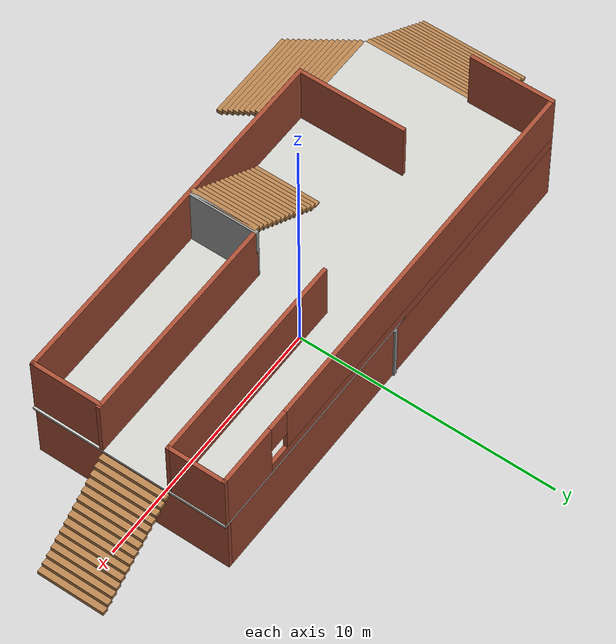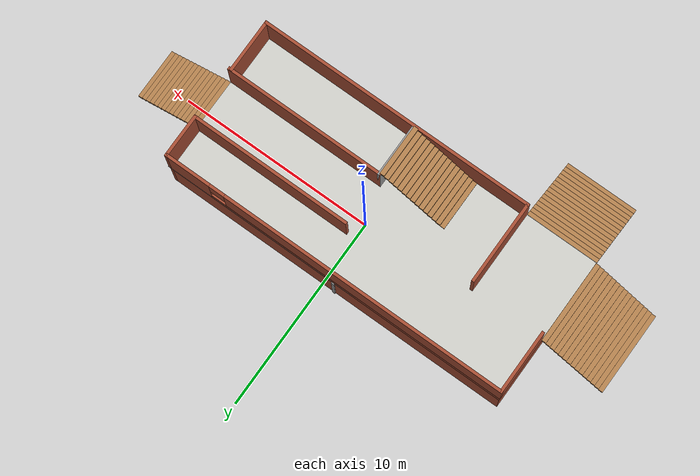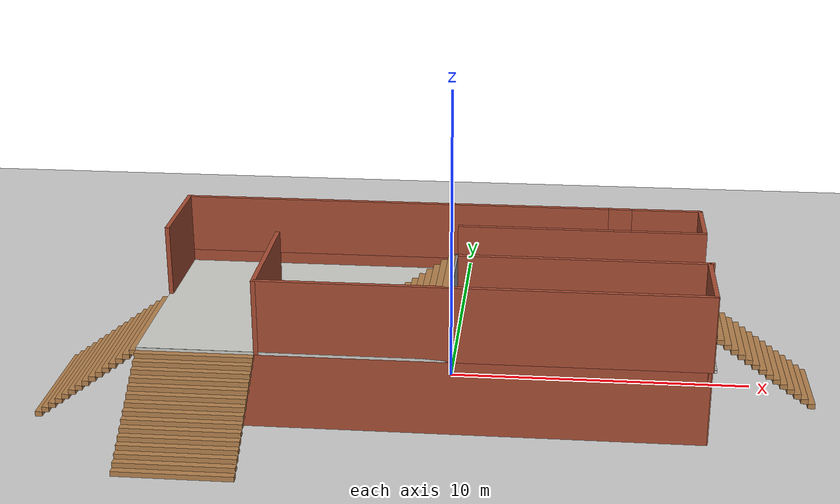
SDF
<sdf version="1.6">
 <world name="default">
  <light name="sun" type="directional">
   <pose>0 0 10 0 -0 0</pose>
   <diffuse>0.8 0.8 0.8 1</diffuse>
   <specular>0.1 0.1 0.1 1</specular>
   <attenuation>
    <range>1000</range>
    <constant>0.9</constant>
    <linear>0.01</linear>
    <quadratic>0.001</quadratic>
   </attenuation>
   <direction>-0.5 0.5 -1</direction>
  </light>
  <model name="ground_plane">
   <static>1</static>
   <link name="link">
    <collision name="collision">
     <geometry><plane><normal>0 0 1</normal><size>100 100</size></plane></geometry>
     <surface><friction><ode><mu>100</mu><mu2>50</mu2></ode></friction></surface>
    </collision>
    <visual name="visual">
     <cast_shadows>0</cast_shadows>
     <geometry><plane><normal>0 0 1</normal><size>100 100</size></plane></geometry>
     <material>
      <script><uri>file://media/materials/scripts/gazebo.material</uri><name>Gazebo/Grey</name></script>
     </material>
    </visual>
   </link>
  </model>
  <gravity>0 0 -9.8</gravity>
  <magnetic_field>6e-06 2.3e-05 -4.2e-05</magnetic_field>
  <atmosphere type="adiabatic"/>
  <physics name="default_physics" default="0" type="ode">
   <max_step_size>0.001</max_step_size>
   <real_time_factor>1</real_time_factor>
   <real_time_update_rate>1000</real_time_update_rate>
  </physics>
  <scene><ambient>0.4 0.4 0.4 1</ambient><background>0.7 0.7 0.7 1</background><shadows>1</shadows></scene>
  <spherical_coordinates>
   <surface_model>EARTH_WGS84</surface_model>
   <latitude_deg>0</latitude_deg>
   <longitude_deg>0</longitude_deg>
   <elevation>0</elevation>
   <heading_deg>0</heading_deg>
  </spherical_coordinates>
  <model name="Staircasebuilding">
   <static>true</static>
   <pose>-0.559158 -2.17306 0 0 -0 0</pose>
   <link name="Floor_0">
    <pose>-0.033404 1.72063 2.5 0 -0 0</pose>
    <visual name="Floor_0_Visual_0">
     <pose>0 -3.74559 0.05 0 -0 0</pose>
     <geometry><box><size>18.0408 0.008813 0.1</size></box></geometry>
     <material>
      <script><uri>file://media/materials/scripts/gazebo.material</uri><name>Gazebo/CeilingTiled</name></script>
      <ambient>1 1 1 1</ambient>
     </material>
    </visual>
    <collision name="Floor_0_Collision_0">
     <geometry><box><size>18.0408 0.008813 0.1</size></box></geometry>
     <pose>0 -3.74559 0.05 0 -0 0</pose>
    </collision>
    <visual name="Floor_0_Visual_1">
     <pose>0 -3.74409 0.05 0 -0 0</pose>
     <geometry><box><size>18.0408 0.005811 0.1</size></box></geometry>
     <material>
      <script><uri>file://media/materials/scripts/gazebo.material</uri><name>Gazebo/CeilingTiled</name></script>
      <ambient>1 1 1 1</ambient>
     </material>
    </visual>
    <collision name="Floor_0_Collision_1">
     <geometry><box><size>18.0408 0.005811 0.1</size></box></geometry>
     <pose>0 -3.74409 0.05 0 -0 0</pose>
    </collision>
    <visual name="Floor_0_Visual_2">
     <pose>0.007256 0.004406 0.05 0 -0 0</pose>
     <geometry><box><size>18.0263 7.49119 0.1</size></box></geometry>
     <material>
      <script><uri>file://media/materials/scripts/gazebo.material</uri><name>Gazebo/CeilingTiled</name></script>
      <ambient>1 1 1 1</ambient>
     </material>
    </visual>
    <collision name="Floor_0_Collision_2">
     <geometry><box><size>18.0263 7.49119 0.1</size></box></geometry>
     <pose>0.007256 0.004406 0.05 0 -0 0</pose>
    </collision>
    <visual name="Floor_0_Visual_3">
     <pose>0.007256 0.004406 0.05 0 -0 0</pose>
     <geometry><box><size>18.0263 7.49119 0.1</size></box></geometry>
     <material>
      <script><uri>file://media/materials/scripts/gazebo.material</uri><name>Gazebo/CeilingTiled</name></script>
      <ambient>1 1 1 1</ambient>
     </material>
    </visual>
    <collision name="Floor_0_Collision_3">
     <geometry><box><size>18.0263 7.49119 0.1</size></box></geometry>
     <pose>0.007256 0.004406 0.05 0 -0 0</pose>
    </collision>
   </link>
   <link name="Stairs_1">
    <visual name="Stairs_1_Visual_0">
     <pose>-7.17241 -5.4097 0.083333 0 -0 -3.14159</pose>
     <geometry><box><size>3.76343 0.233333 0.166667</size></box></geometry>
     <material>
      <script><uri>file://media/materials/scripts/gazebo.material</uri><name>Gazebo/Wood</name></script>
      <ambient>1 1 1 1</ambient>
     </material>
    </visual>
    <collision name="Stairs_1_Collision_0">
     <geometry><box><size>3.76343 0.233333 0.166667</size></box></geometry>
     <pose>-7.17241 -5.4097 0.083333 0 -0 -3.14159</pose>
    </collision>
    <visual name="Stairs_1_Visual_1">
     <pose>-7.17241 -5.17637 0.25 0 -0 -3.14159</pose>
     <geometry><box><size>3.76343 0.233333 0.166667</size></box></geometry>
     <material>
      <script><uri>file://media/materials/scripts/gazebo.material</uri><name>Gazebo/Wood</name></script>
      <ambient>1 1 1 1</ambient>
     </material>
    </visual>
    <collision name="Stairs_1_Collision_1">
     <geometry><box><size>3.76343 0.233333 0.166667</size></box></geometry>
     <pose>-7.17241 -5.17637 0.25 0 -0 -3.14159</pose>
    </collision>
    <visual name="Stairs_1_Visual_2">
     <pose>-7.17241 -4.94304 0.416667 0 -0 -3.14159</pose>
     <geometry><box><size>3.76343 0.233333 0.166667</size></box></geometry>
     <material>
      <script><uri>file://media/materials/scripts/gazebo.material</uri><name>Gazebo/Wood</name></script>
      <ambient>1 1 1 1</ambient>
     </material>
    </visual>
    <collision name="Stairs_1_Collision_2">
     <geometry><box><size>3.76343 0.233333 0.166667</size></box></geometry>
     <pose>-7.17241 -4.94304 0.416667 0 -0 -3.14159</pose>
    </collision>
    <visual name="Stairs_1_Visual_3">
     <pose>-7.17241 -4.7097 0.583333 0 -0 -3.14159</pose>
     <geometry><box><size>3.76343 0.233333 0.166667</size></box></geometry>
     <material>
      <script><uri>file://media/materials/scripts/gazebo.material</uri><name>Gazebo/Wood</name></script>
      <ambient>1 1 1 1</ambient>
     </material>
    </visual>
    <collision name="Stairs_1_Collision_3">
     <geometry><box><size>3.76343 0.233333 0.166667</size></box></geometry>
     <pose>-7.17241 -4.7097 0.583333 0 -0 -3.14159</pose>
    </collision>
    <visual name="Stairs_1_Visual_4">
     <pose>-7.17241 -4.47637 0.75 0 -0 -3.14159</pose>
     <geometry><box><size>3.76343 0.233333 0.166667</size></box></geometry>
     <material>
      <script><uri>file://media/materials/scripts/gazebo.material</uri><name>Gazebo/Wood</name></script>
      <ambient>1 1 1 1</ambient>
     </material>
    </visual>
    <collision name="Stairs_1_Collision_4">
     <geometry><box><size>3.76343 0.233333 0.166667</size></box></geometry>
     <pose>-7.17241 -4.47637 0.75 0 -0 -3.14159</pose>
    </collision>
    <visual name="Stairs_1_Visual_5">
     <pose>-7.17241 -4.24304 0.916667 0 -0 -3.14159</pose>
     <geometry><box><size>3.76343 0.233333 0.166667</size></box></geometry>
     <material>
      <script><uri>file://media/materials/scripts/gazebo.material</uri><name>Gazebo/Wood</name></script>
      <ambient>1 1 1 1</ambient>
     </material>
    </visual>
    <collision name="Stairs_1_Collision_5">
     <geometry><box><size>3.76343 0.233333 0.166667</size></box></geometry>
     <pose>-7.17241 -4.24304 0.916667 0 -0 -3.14159</pose>
    </collision>
    <visual name="Stairs_1_Visual_6">
     <pose>-7.17241 -4.0097 1.08333 0 -0 -3.14159</pose>
     <geometry><box><size>3.76343 0.233333 0.166667</size></box></geometry>
     <material>
      <script><uri>file://media/materials/scripts/gazebo.material</uri><name>Gazebo/Wood</name></script>
      <ambient>1 1 1 1</ambient>
     </material>
    </visual>
    <collision name="Stairs_1_Collision_6">
     <geometry><box><size>3.76343 0.233333 0.166667</size></box></geometry>
     <pose>-7.17241 -4.0097 1.08333 0 -0 -3.14159</pose>
    </collision>
    <visual name="Stairs_1_Visual_7">
     <pose>-7.17241 -3.77637 1.25 0 -0 -3.14159</pose>
     <geometry><box><size>3.76343 0.233333 0.166667</size></box></geometry>
     <material>
      <script><uri>file://media/materials/scripts/gazebo.material</uri><name>Gazebo/Wood</name></script>
      <ambient>1 1 1 1</ambient>
     </material>
    </visual>
    <collision name="Stairs_1_Collision_7">
     <geometry><box><size>3.76343 0.233333 0.166667</size></box></geometry>
     <pose>-7.17241 -3.77637 1.25 0 -0 -3.14159</pose>
    </collision>
    <visual name="Stairs_1_Visual_8">
     <pose>-7.17241 -3.54304 1.41667 0 -0 -3.14159</pose>
     <geometry><box><size>3.76343 0.233333 0.166667</size></box></geometry>
     <material>
      <script><uri>file://media/materials/scripts/gazebo.material</uri><name>Gazebo/Wood</name></script>
      <ambient>1 1 1 1</ambient>
     </material>
    </visual>
    <collision name="Stairs_1_Collision_8">
     <geometry><box><size>3.76343 0.233333 0.166667</size></box></geometry>
     <pose>-7.17241 -3.54304 1.41667 0 -0 -3.14159</pose>
    </collision>
    <visual name="Stairs_1_Visual_9">
     <pose>-7.17241 -3.3097 1.58333 0 -0 -3.14159</pose>
     <geometry><box><size>3.76343 0.233333 0.166667</size></box></geometry>
     <material>
      <script><uri>file://media/materials/scripts/gazebo.material</uri><name>Gazebo/Wood</name></script>
      <ambient>1 1 1 1</ambient>
     </material>
    </visual>
    <collision name="Stairs_1_Collision_9">
     <geometry><box><size>3.76343 0.233333 0.166667</size></box></geometry>
     <pose>-7.17241 -3.3097 1.58333 0 -0 -3.14159</pose>
    </collision>
    <visual name="Stairs_1_Visual_10">
     <pose>-7.17241 -3.07637 1.75 0 -0 -3.14159</pose>
     <geometry><box><size>3.76343 0.233333 0.166667</size></box></geometry>
     <material>
      <script><uri>file://media/materials/scripts/gazebo.material</uri><name>Gazebo/Wood</name></script>
      <ambient>1 1 1 1</ambient>
     </material>
    </visual>
    <collision name="Stairs_1_Collision_10">
     <geometry><box><size>3.76343 0.233333 0.166667</size></box></geometry>
     <pose>-7.17241 -3.07637 1.75 0 -0 -3.14159</pose>
    </collision>
    <visual name="Stairs_1_Visual_11">
     <pose>-7.17241 -2.84304 1.91667 0 -0 -3.14159</pose>
     <geometry><box><size>3.76343 0.233333 0.166667</size></box></geometry>
     <material>
      <script><uri>file://media/materials/scripts/gazebo.material</uri><name>Gazebo/Wood</name></script>
      <ambient>1 1 1 1</ambient>
     </material>
    </visual>
    <collision name="Stairs_1_Collision_11">
     <geometry><box><size>3.76343 0.233333 0.166667</size></box></geometry>
     <pose>-7.17241 -2.84304 1.91667 0 -0 -3.14159</pose>
    </collision>
    <visual name="Stairs_1_Visual_12">
     <pose>-7.17241 -2.6097 2.08333 0 -0 -3.14159</pose>
     <geometry><box><size>3.76343 0.233333 0.166667</size></box></geometry>
     <material>
      <script><uri>file://media/materials/scripts/gazebo.material</uri><name>Gazebo/Wood</name></script>
      <ambient>1 1 1 1</ambient>
     </material>
    </visual>
    <collision name="Stairs_1_Collision_12">
     <geometry><box><size>3.76343 0.233333 0.166667</size></box></geometry>
     <pose>-7.17241 -2.6097 2.08333 0 -0 -3.14159</pose>
    </collision>
    <visual name="Stairs_1_Visual_13">
     <pose>-7.17241 -2.37637 2.25 0 -0 -3.14159</pose>
     <geometry><box><size>3.76343 0.233333 0.166667</size></box></geometry>
     <material>
      <script><uri>file://media/materials/scripts/gazebo.material</uri><name>Gazebo/Wood</name></script>
      <ambient>1 1 1 1</ambient>
     </material>
    </visual>
    <collision name="Stairs_1_Collision_13">
     <geometry><box><size>3.76343 0.233333 0.166667</size></box></geometry>
     <pose>-7.17241 -2.37637 2.25 0 -0 -3.14159</pose>
    </collision>
    <visual name="Stairs_1_Visual_14">
     <pose>-7.17241 -2.14304 2.41667 0 -0 -3.14159</pose>
     <geometry><box><size>3.76343 0.233333 0.166667</size></box></geometry>
     <material>
      <script><uri>file://media/materials/scripts/gazebo.material</uri><name>Gazebo/Wood</name></script>
      <ambient>1 1 1 1</ambient>
     </material>
    </visual>
    <collision name="Stairs_1_Collision_14">
     <geometry><box><size>3.76343 0.233333 0.166667</size></box></geometry>
     <pose>-7.17241 -2.14304 2.41667 0 -0 -3.14159</pose>
    </collision>
   </link>
   <link name="Stairs_3">
    <visual name="Stairs_3_Visual_0">
     <pose>-12.4226 0.091568 0.083333 0 -0 1.5708</pose>
     <geometry><box><size>4.22426 0.233333 0.166667</size></box></geometry>
     <material>
      <script><uri>file://media/materials/scripts/gazebo.material</uri><name>Gazebo/Wood</name></script>
      <ambient>1 1 1 1</ambient>
     </material>
    </visual>
    <collision name="Stairs_3_Collision_0">
     <geometry><box><size>4.22426 0.233333 0.166667</size></box></geometry>
     <pose>-12.4226 0.091568 0.083333 0 -0 1.5708</pose>
    </collision>
    <visual name="Stairs_3_Visual_1">
     <pose>-12.1893 0.091568 0.25 0 -0 1.5708</pose>
     <geometry><box><size>4.22426 0.233333 0.166667</size></box></geometry>
     <material>
      <script><uri>file://media/materials/scripts/gazebo.material</uri><name>Gazebo/Wood</name></script>
      <ambient>1 1 1 1</ambient>
     </material>
    </visual>
    <collision name="Stairs_3_Collision_1">
     <geometry><box><size>4.22426 0.233333 0.166667</size></box></geometry>
     <pose>-12.1893 0.091568 0.25 0 -0 1.5708</pose>
    </collision>
    <visual name="Stairs_3_Visual_2">
     <pose>-11.956 0.091568 0.416667 0 -0 1.5708</pose>
     <geometry><box><size>4.22426 0.233333 0.166667</size></box></geometry>
     <material>
      <script><uri>file://media/materials/scripts/gazebo.material</uri><name>Gazebo/Wood</name></script>
      <ambient>1 1 1 1</ambient>
     </material>
    </visual>
    <collision name="Stairs_3_Collision_2">
     <geometry><box><size>4.22426 0.233333 0.166667</size></box></geometry>
     <pose>-11.956 0.091568 0.416667 0 -0 1.5708</pose>
    </collision>
    <visual name="Stairs_3_Visual_3">
     <pose>-11.7226 0.091568 0.583333 0 -0 1.5708</pose>
     <geometry><box><size>4.22426 0.233333 0.166667</size></box></geometry>
     <material>
      <script><uri>file://media/materials/scripts/gazebo.material</uri><name>Gazebo/Wood</name></script>
      <ambient>1 1 1 1</ambient>
     </material>
    </visual>
    <collision name="Stairs_3_Collision_3">
     <geometry><box><size>4.22426 0.233333 0.166667</size></box></geometry>
     <pose>-11.7226 0.091568 0.583333 0 -0 1.5708</pose>
    </collision>
    <visual name="Stairs_3_Visual_4">
     <pose>-11.4893 0.091568 0.75 0 -0 1.5708</pose>
     <geometry><box><size>4.22426 0.233333 0.166667</size></box></geometry>
     <material>
      <script><uri>file://media/materials/scripts/gazebo.material</uri><name>Gazebo/Wood</name></script>
      <ambient>1 1 1 1</ambient>
     </material>
    </visual>
    <collision name="Stairs_3_Collision_4">
     <geometry><box><size>4.22426 0.233333 0.166667</size></box></geometry>
     <pose>-11.4893 0.091568 0.75 0 -0 1.5708</pose>
    </collision>
    <visual name="Stairs_3_Visual_5">
     <pose>-11.256 0.091568 0.916667 0 -0 1.5708</pose>
     <geometry><box><size>4.22426 0.233333 0.166667</size></box></geometry>
     <material>
      <script><uri>file://media/materials/scripts/gazebo.material</uri><name>Gazebo/Wood</name></script>
      <ambient>1 1 1 1</ambient>
     </material>
    </visual>
    <collision name="Stairs_3_Collision_5">
     <geometry><box><size>4.22426 0.233333 0.166667</size></box></geometry>
     <pose>-11.256 0.091568 0.916667 0 -0 1.5708</pose>
    </collision>
    <visual name="Stairs_3_Visual_6">
     <pose>-11.0226 0.091568 1.08333 0 -0 1.5708</pose>
     <geometry><box><size>4.22426 0.233333 0.166667</size></box></geometry>
     <material>
      <script><uri>file://media/materials/scripts/gazebo.material</uri><name>Gazebo/Wood</name></script>
      <ambient>1 1 1 1</ambient>
     </material>
    </visual>
    <collision name="Stairs_3_Collision_6">
     <geometry><box><size>4.22426 0.233333 0.166667</size></box></geometry>
     <pose>-11.0226 0.091568 1.08333 0 -0 1.5708</pose>
    </collision>
    <visual name="Stairs_3_Visual_7">
     <pose>-10.7893 0.091568 1.25 0 -0 1.5708</pose>
     <geometry><box><size>4.22426 0.233333 0.166667</size></box></geometry>
     <material>
      <script><uri>file://media/materials/scripts/gazebo.material</uri><name>Gazebo/Wood</name></script>
      <ambient>1 1 1 1</ambient>
     </material>
    </visual>
    <collision name="Stairs_3_Collision_7">
     <geometry><box><size>4.22426 0.233333 0.166667</size></box></geometry>
     <pose>-10.7893 0.091568 1.25 0 -0 1.5708</pose>
    </collision>
    <visual name="Stairs_3_Visual_8">
     <pose>-10.556 0.091568 1.41667 0 -0 1.5708</pose>
     <geometry><box><size>4.22426 0.233333 0.166667</size></box></geometry>
     <material>
      <script><uri>file://media/materials/scripts/gazebo.material</uri><name>Gazebo/Wood</name></script>
      <ambient>1 1 1 1</ambient>
     </material>
    </visual>
    <collision name="Stairs_3_Collision_8">
     <geometry><box><size>4.22426 0.233333 0.166667</size></box></geometry>
     <pose>-10.556 0.091568 1.41667 0 -0 1.5708</pose>
    </collision>
    <visual name="Stairs_3_Visual_9">
     <pose>-10.3226 0.091568 1.58333 0 -0 1.5708</pose>
     <geometry><box><size>4.22426 0.233333 0.166667</size></box></geometry>
     <material>
      <script><uri>file://media/materials/scripts/gazebo.material</uri><name>Gazebo/Wood</name></script>
      <ambient>1 1 1 1</ambient>
     </material>
    </visual>
    <collision name="Stairs_3_Collision_9">
     <geometry><box><size>4.22426 0.233333 0.166667</size></box></geometry>
     <pose>-10.3226 0.091568 1.58333 0 -0 1.5708</pose>
    </collision>
    <visual name="Stairs_3_Visual_10">
     <pose>-10.0893 0.091568 1.75 0 -0 1.5708</pose>
     <geometry><box><size>4.22426 0.233333 0.166667</size></box></geometry>
     <material>
      <script><uri>file://media/materials/scripts/gazebo.material</uri><name>Gazebo/Wood</name></script>
      <ambient>1 1 1 1</ambient>
     </material>
    </visual>
    <collision name="Stairs_3_Collision_10">
     <geometry><box><size>4.22426 0.233333 0.166667</size></box></geometry>
     <pose>-10.0893 0.091568 1.75 0 -0 1.5708</pose>
    </collision>
    <visual name="Stairs_3_Visual_11">
     <pose>-9.85595 0.091568 1.91667 0 -0 1.5708</pose>
     <geometry><box><size>4.22426 0.233333 0.166667</size></box></geometry>
     <material>
      <script><uri>file://media/materials/scripts/gazebo.material</uri><name>Gazebo/Wood</name></script>
      <ambient>1 1 1 1</ambient>
     </material>
    </visual>
    <collision name="Stairs_3_Collision_11">
     <geometry><box><size>4.22426 0.233333 0.166667</size></box></geometry>
     <pose>-9.85595 0.091568 1.91667 0 -0 1.5708</pose>
    </collision>
    <visual name="Stairs_3_Visual_12">
     <pose>-9.62262 0.091568 2.08333 0 -0 1.5708</pose>
     <geometry><box><size>4.22426 0.233333 0.166667</size></box></geometry>
     <material>
      <script><uri>file://media/materials/scripts/gazebo.material</uri><name>Gazebo/Wood</name></script>
      <ambient>1 1 1 1</ambient>
     </material>
    </visual>
    <collision name="Stairs_3_Collision_12">
     <geometry><box><size>4.22426 0.233333 0.166667</size></box></geometry>
     <pose>-9.62262 0.091568 2.08333 0 -0 1.5708</pose>
    </collision>
    <visual name="Stairs_3_Visual_13">
     <pose>-9.38928 0.091568 2.25 0 -0 1.5708</pose>
     <geometry><box><size>4.22426 0.233333 0.166667</size></box></geometry>
     <material>
      <script><uri>file://media/materials/scripts/gazebo.material</uri><name>Gazebo/Wood</name></script>
      <ambient>1 1 1 1</ambient>
     </material>
    </visual>
    <collision name="Stairs_3_Collision_13">
     <geometry><box><size>4.22426 0.233333 0.166667</size></box></geometry>
     <pose>-9.38928 0.091568 2.25 0 -0 1.5708</pose>
    </collision>
    <visual name="Stairs_3_Visual_14">
     <pose>-9.15595 0.091568 2.41667 0 -0 1.5708</pose>
     <geometry><box><size>4.22426 0.233333 0.166667</size></box></geometry>
     <material>
      <script><uri>file://media/materials/scripts/gazebo.material</uri><name>Gazebo/Wood</name></script>
      <ambient>1 1 1 1</ambient>
     </material>
    </visual>
    <collision name="Stairs_3_Collision_14">
     <geometry><box><size>4.22426 0.233333 0.166667</size></box></geometry>
     <pose>-9.15595 0.091568 2.41667 0 -0 1.5708</pose>
    </collision>
   </link>
   <link name="Stairs_4">
    <visual name="Stairs_4_Visual_0">
     <pose>-2.56499 -0.643419 2.58333 0 -0 1.5708</pose>
     <geometry><box><size>2.59069 0.233333 0.166667</size></box></geometry>
     <material>
      <script><uri>file://media/materials/scripts/gazebo.material</uri><name>Gazebo/Wood</name></script>
      <ambient>1 1 1 1</ambient>
     </material>
    </visual>
    <collision name="Stairs_4_Collision_0">
     <geometry><box><size>2.59069 0.233333 0.166667</size></box></geometry>
     <pose>-2.56499 -0.643419 2.58333 0 -0 1.5708</pose>
    </collision>
    <visual name="Stairs_4_Visual_1">
     <pose>-2.33165 -0.643419 2.75 0 -0 1.5708</pose>
     <geometry><box><size>2.59069 0.233333 0.166667</size></box></geometry>
     <material>
      <script><uri>file://media/materials/scripts/gazebo.material</uri><name>Gazebo/Wood</name></script>
      <ambient>1 1 1 1</ambient>
     </material>
    </visual>
    <collision name="Stairs_4_Collision_1">
     <geometry><box><size>2.59069 0.233333 0.166667</size></box></geometry>
     <pose>-2.33165 -0.643419 2.75 0 -0 1.5708</pose>
    </collision>
    <visual name="Stairs_4_Visual_2">
     <pose>-2.09832 -0.643419 2.91667 0 -0 1.5708</pose>
     <geometry><box><size>2.59069 0.233333 0.166667</size></box></geometry>
     <material>
      <script><uri>file://media/materials/scripts/gazebo.material</uri><name>Gazebo/Wood</name></script>
      <ambient>1 1 1 1</ambient>
     </material>
    </visual>
    <collision name="Stairs_4_Collision_2">
     <geometry><box><size>2.59069 0.233333 0.166667</size></box></geometry>
     <pose>-2.09832 -0.643419 2.91667 0 -0 1.5708</pose>
    </collision>
    <visual name="Stairs_4_Visual_3">
     <pose>-1.86499 -0.643419 3.08333 0 -0 1.5708</pose>
     <geometry><box><size>2.59069 0.233333 0.166667</size></box></geometry>
     <material>
      <script><uri>file://media/materials/scripts/gazebo.material</uri><name>Gazebo/Wood</name></script>
      <ambient>1 1 1 1</ambient>
     </material>
    </visual>
    <collision name="Stairs_4_Collision_3">
     <geometry><box><size>2.59069 0.233333 0.166667</size></box></geometry>
     <pose>-1.86499 -0.643419 3.08333 0 -0 1.5708</pose>
    </collision>
    <visual name="Stairs_4_Visual_4">
     <pose>-1.63165 -0.643419 3.25 0 -0 1.5708</pose>
     <geometry><box><size>2.59069 0.233333 0.166667</size></box></geometry>
     <material>
      <script><uri>file://media/materials/scripts/gazebo.material</uri><name>Gazebo/Wood</name></script>
      <ambient>1 1 1 1</ambient>
     </material>
    </visual>
    <collision name="Stairs_4_Collision_4">
     <geometry><box><size>2.59069 0.233333 0.166667</size></box></geometry>
     <pose>-1.63165 -0.643419 3.25 0 -0 1.5708</pose>
    </collision>
    <visual name="Stairs_4_Visual_5">
     <pose>-1.39832 -0.643419 3.41667 0 -0 1.5708</pose>
     <geometry><box><size>2.59069 0.233333 0.166667</size></box></geometry>
     <material>
      <script><uri>file://media/materials/scripts/gazebo.material</uri><name>Gazebo/Wood</name></script>
      <ambient>1 1 1 1</ambient>
     </material>
    </visual>
    <collision name="Stairs_4_Collision_5">
     <geometry><box><size>2.59069 0.233333 0.166667</size></box></geometry>
     <pose>-1.39832 -0.643419 3.41667 0 -0 1.5708</pose>
    </collision>
    <visual name="Stairs_4_Visual_6">
     <pose>-1.16499 -0.643419 3.58333 0 -0 1.5708</pose>
     <geometry><box><size>2.59069 0.233333 0.166667</size></box></geometry>
     <material>
      <script><uri>file://media/materials/scripts/gazebo.material</uri><name>Gazebo/Wood</name></script>
      <ambient>1 1 1 1</ambient>
     </material>
    </visual>
    <collision name="Stairs_4_Collision_6">
     <geometry><box><size>2.59069 0.233333 0.166667</size></box></geometry>
     <pose>-1.16499 -0.643419 3.58333 0 -0 1.5708</pose>
    </collision>
    <visual name="Stairs_4_Visual_7">
     <pose>-0.931654 -0.643419 3.75 0 -0 1.5708</pose>
     <geometry><box><size>2.59069 0.233333 0.166667</size></box></geometry>
     <material>
      <script><uri>file://media/materials/scripts/gazebo.material</uri><name>Gazebo/Wood</name></script>
      <ambient>1 1 1 1</ambient>
     </material>
    </visual>
    <collision name="Stairs_4_Collision_7">
     <geometry><box><size>2.59069 0.233333 0.166667</size></box></geometry>
     <pose>-0.931654 -0.643419 3.75 0 -0 1.5708</pose>
    </collision>
    <visual name="Stairs_4_Visual_8">
     <pose>-0.698321 -0.643419 3.91667 0 -0 1.5708</pose>
     <geometry><box><size>2.59069 0.233333 0.166667</size></box></geometry>
     <material>
      <script><uri>file://media/materials/scripts/gazebo.material</uri><name>Gazebo/Wood</name></script>
      <ambient>1 1 1 1</ambient>
     </material>
    </visual>
    <collision name="Stairs_4_Collision_8">
     <geometry><box><size>2.59069 0.233333 0.166667</size></box></geometry>
     <pose>-0.698321 -0.643419 3.91667 0 -0 1.5708</pose>
    </collision>
    <visual name="Stairs_4_Visual_9">
     <pose>-0.464987 -0.643419 4.08333 0 -0 1.5708</pose>
     <geometry><box><size>2.59069 0.233333 0.166667</size></box></geometry>
     <material>
      <script><uri>file://media/materials/scripts/gazebo.material</uri><name>Gazebo/Wood</name></script>
      <ambient>1 1 1 1</ambient>
     </material>
    </visual>
    <collision name="Stairs_4_Collision_9">
     <geometry><box><size>2.59069 0.233333 0.166667</size></box></geometry>
     <pose>-0.464987 -0.643419 4.08333 0 -0 1.5708</pose>
    </collision>
    <visual name="Stairs_4_Visual_10">
     <pose>-0.231654 -0.643419 4.25 0 -0 1.5708</pose>
     <geometry><box><size>2.59069 0.233333 0.166667</size></box></geometry>
     <material>
      <script><uri>file://media/materials/scripts/gazebo.material</uri><name>Gazebo/Wood</name></script>
      <ambient>1 1 1 1</ambient>
     </material>
    </visual>
    <collision name="Stairs_4_Collision_10">
     <geometry><box><size>2.59069 0.233333 0.166667</size></box></geometry>
     <pose>-0.231654 -0.643419 4.25 0 -0 1.5708</pose>
    </collision>
    <visual name="Stairs_4_Visual_11">
     <pose>0.001679 -0.643419 4.41667 0 -0 1.5708</pose>
     <geometry><box><size>2.59069 0.233333 0.166667</size></box></geometry>
     <material>
      <script><uri>file://media/materials/scripts/gazebo.material</uri><name>Gazebo/Wood</name></script>
      <ambient>1 1 1 1</ambient>
     </material>
    </visual>
    <collision name="Stairs_4_Collision_11">
     <geometry><box><size>2.59069 0.233333 0.166667</size></box></geometry>
     <pose>0.001679 -0.643419 4.41667 0 -0 1.5708</pose>
    </collision>
    <visual name="Stairs_4_Visual_12">
     <pose>0.235013 -0.643419 4.58333 0 -0 1.5708</pose>
     <geometry><box><size>2.59069 0.233333 0.166667</size></box></geometry>
     <material>
      <script><uri>file://media/materials/scripts/gazebo.material</uri><name>Gazebo/Wood</name></script>
      <ambient>1 1 1 1</ambient>
     </material>
    </visual>
    <collision name="Stairs_4_Collision_12">
     <geometry><box><size>2.59069 0.233333 0.166667</size></box></geometry>
     <pose>0.235013 -0.643419 4.58333 0 -0 1.5708</pose>
    </collision>
    <visual name="Stairs_4_Visual_13">
     <pose>0.468346 -0.643419 4.75 0 -0 1.5708</pose>
     <geometry><box><size>2.59069 0.233333 0.166667</size></box></geometry>
     <material>
      <script><uri>file://media/materials/scripts/gazebo.material</uri><name>Gazebo/Wood</name></script>
      <ambient>1 1 1 1</ambient>
     </material>
    </visual>
    <collision name="Stairs_4_Collision_13">
     <geometry><box><size>2.59069 0.233333 0.166667</size></box></geometry>
     <pose>0.468346 -0.643419 4.75 0 -0 1.5708</pose>
    </collision>
    <visual name="Stairs_4_Visual_14">
     <pose>0.701679 -0.643419 4.91667 0 -0 1.5708</pose>
     <geometry><box><size>2.59069 0.233333 0.166667</size></box></geometry>
     <material>
      <script><uri>file://media/materials/scripts/gazebo.material</uri><name>Gazebo/Wood</name></script>
      <ambient>1 1 1 1</ambient>
     </material>
    </visual>
    <collision name="Stairs_4_Collision_14">
     <geometry><box><size>2.59069 0.233333 0.166667</size></box></geometry>
     <pose>0.701679 -0.643419 4.91667 0 -0 1.5708</pose>
    </collision>
   </link>
   <link name="Stairs_6">
    <visual name="Stairs_6_Visual_0">
     <pose>12.4214 2.03413 0.083333 0 -0 -1.5708</pose>
     <geometry><box><size>2.58304 0.235679 0.166667</size></box></geometry>
     <material>
      <script><uri>file://media/materials/scripts/gazebo.material</uri><name>Gazebo/Wood</name></script>
      <ambient>1 1 1 1</ambient>
     </material>
    </visual>
    <collision name="Stairs_6_Collision_0">
     <geometry><box><size>2.58304 0.235679 0.166667</size></box></geometry>
     <pose>12.4214 2.03413 0.083333 0 -0 -1.5708</pose>
    </collision>
    <visual name="Stairs_6_Visual_1">
     <pose>12.1858 2.03413 0.25 0 -0 -1.5708</pose>
     <geometry><box><size>2.58304 0.235679 0.166667</size></box></geometry>
     <material>
      <script><uri>file://media/materials/scripts/gazebo.material</uri><name>Gazebo/Wood</name></script>
      <ambient>1 1 1 1</ambient>
     </material>
    </visual>
    <collision name="Stairs_6_Collision_1">
     <geometry><box><size>2.58304 0.235679 0.166667</size></box></geometry>
     <pose>12.1858 2.03413 0.25 0 -0 -1.5708</pose>
    </collision>
    <visual name="Stairs_6_Visual_2">
     <pose>11.9501 2.03413 0.416667 0 -0 -1.5708</pose>
     <geometry><box><size>2.58304 0.235679 0.166667</size></box></geometry>
     <material>
      <script><uri>file://media/materials/scripts/gazebo.material</uri><name>Gazebo/Wood</name></script>
      <ambient>1 1 1 1</ambient>
     </material>
    </visual>
    <collision name="Stairs_6_Collision_2">
     <geometry><box><size>2.58304 0.235679 0.166667</size></box></geometry>
     <pose>11.9501 2.03413 0.416667 0 -0 -1.5708</pose>
    </collision>
    <visual name="Stairs_6_Visual_3">
     <pose>11.7144 2.03413 0.583333 0 -0 -1.5708</pose>
     <geometry><box><size>2.58304 0.235679 0.166667</size></box></geometry>
     <material>
      <script><uri>file://media/materials/scripts/gazebo.material</uri><name>Gazebo/Wood</name></script>
      <ambient>1 1 1 1</ambient>
     </material>
    </visual>
    <collision name="Stairs_6_Collision_3">
     <geometry><box><size>2.58304 0.235679 0.166667</size></box></geometry>
     <pose>11.7144 2.03413 0.583333 0 -0 -1.5708</pose>
    </collision>
    <visual name="Stairs_6_Visual_4">
     <pose>11.4787 2.03413 0.75 0 -0 -1.5708</pose>
     <geometry><box><size>2.58304 0.235679 0.166667</size></box></geometry>
     <material>
      <script><uri>file://media/materials/scripts/gazebo.material</uri><name>Gazebo/Wood</name></script>
      <ambient>1 1 1 1</ambient>
     </material>
    </visual>
    <collision name="Stairs_6_Collision_4">
     <geometry><box><size>2.58304 0.235679 0.166667</size></box></geometry>
     <pose>11.4787 2.03413 0.75 0 -0 -1.5708</pose>
    </collision>
    <visual name="Stairs_6_Visual_5">
     <pose>11.2431 2.03413 0.916667 0 -0 -1.5708</pose>
     <geometry><box><size>2.58304 0.235679 0.166667</size></box></geometry>
     <material>
      <script><uri>file://media/materials/scripts/gazebo.material</uri><name>Gazebo/Wood</name></script>
      <ambient>1 1 1 1</ambient>
     </material>
    </visual>
    <collision name="Stairs_6_Collision_5">
     <geometry><box><size>2.58304 0.235679 0.166667</size></box></geometry>
     <pose>11.2431 2.03413 0.916667 0 -0 -1.5708</pose>
    </collision>
    <visual name="Stairs_6_Visual_6">
     <pose>11.0074 2.03413 1.08333 0 -0 -1.5708</pose>
     <geometry><box><size>2.58304 0.235679 0.166667</size></box></geometry>
     <material>
      <script><uri>file://media/materials/scripts/gazebo.material</uri><name>Gazebo/Wood</name></script>
      <ambient>1 1 1 1</ambient>
     </material>
    </visual>
    <collision name="Stairs_6_Collision_6">
     <geometry><box><size>2.58304 0.235679 0.166667</size></box></geometry>
     <pose>11.0074 2.03413 1.08333 0 -0 -1.5708</pose>
    </collision>
    <visual name="Stairs_6_Visual_7">
     <pose>10.7717 2.03413 1.25 0 -0 -1.5708</pose>
     <geometry><box><size>2.58304 0.235679 0.166667</size></box></geometry>
     <material>
      <script><uri>file://media/materials/scripts/gazebo.material</uri><name>Gazebo/Wood</name></script>
      <ambient>1 1 1 1</ambient>
     </material>
    </visual>
    <collision name="Stairs_6_Collision_7">
     <geometry><box><size>2.58304 0.235679 0.166667</size></box></geometry>
     <pose>10.7717 2.03413 1.25 0 -0 -1.5708</pose>
    </collision>
    <visual name="Stairs_6_Visual_8">
     <pose>10.536 2.03413 1.41667 0 -0 -1.5708</pose>
     <geometry><box><size>2.58304 0.235679 0.166667</size></box></geometry>
     <material>
      <script><uri>file://media/materials/scripts/gazebo.material</uri><name>Gazebo/Wood</name></script>
      <ambient>1 1 1 1</ambient>
     </material>
    </visual>
    <collision name="Stairs_6_Collision_8">
     <geometry><box><size>2.58304 0.235679 0.166667</size></box></geometry>
     <pose>10.536 2.03413 1.41667 0 -0 -1.5708</pose>
    </collision>
    <visual name="Stairs_6_Visual_9">
     <pose>10.3003 2.03413 1.58333 0 -0 -1.5708</pose>
     <geometry><box><size>2.58304 0.235679 0.166667</size></box></geometry>
     <material>
      <script><uri>file://media/materials/scripts/gazebo.material</uri><name>Gazebo/Wood</name></script>
      <ambient>1 1 1 1</ambient>
     </material>
    </visual>
    <collision name="Stairs_6_Collision_9">
     <geometry><box><size>2.58304 0.235679 0.166667</size></box></geometry>
     <pose>10.3003 2.03413 1.58333 0 -0 -1.5708</pose>
    </collision>
    <visual name="Stairs_6_Visual_10">
     <pose>10.0647 2.03413 1.75 0 -0 -1.5708</pose>
     <geometry><box><size>2.58304 0.235679 0.166667</size></box></geometry>
     <material>
      <script><uri>file://media/materials/scripts/gazebo.material</uri><name>Gazebo/Wood</name></script>
      <ambient>1 1 1 1</ambient>
     </material>
    </visual>
    <collision name="Stairs_6_Collision_10">
     <geometry><box><size>2.58304 0.235679 0.166667</size></box></geometry>
     <pose>10.0647 2.03413 1.75 0 -0 -1.5708</pose>
    </collision>
    <visual name="Stairs_6_Visual_11">
     <pose>9.82898 2.03413 1.91667 0 -0 -1.5708</pose>
     <geometry><box><size>2.58304 0.235679 0.166667</size></box></geometry>
     <material>
      <script><uri>file://media/materials/scripts/gazebo.material</uri><name>Gazebo/Wood</name></script>
      <ambient>1 1 1 1</ambient>
     </material>
    </visual>
    <collision name="Stairs_6_Collision_11">
     <geometry><box><size>2.58304 0.235679 0.166667</size></box></geometry>
     <pose>9.82898 2.03413 1.91667 0 -0 -1.5708</pose>
    </collision>
    <visual name="Stairs_6_Visual_12">
     <pose>9.5933 2.03413 2.08333 0 -0 -1.5708</pose>
     <geometry><box><size>2.58304 0.235679 0.166667</size></box></geometry>
     <material>
      <script><uri>file://media/materials/scripts/gazebo.material</uri><name>Gazebo/Wood</name></script>
      <ambient>1 1 1 1</ambient>
     </material>
    </visual>
    <collision name="Stairs_6_Collision_12">
     <geometry><box><size>2.58304 0.235679 0.166667</size></box></geometry>
     <pose>9.5933 2.03413 2.08333 0 -0 -1.5708</pose>
    </collision>
    <visual name="Stairs_6_Visual_13">
     <pose>9.35762 2.03413 2.25 0 -0 -1.5708</pose>
     <geometry><box><size>2.58304 0.235679 0.166667</size></box></geometry>
     <material>
      <script><uri>file://media/materials/scripts/gazebo.material</uri><name>Gazebo/Wood</name></script>
      <ambient>1 1 1 1</ambient>
     </material>
    </visual>
    <collision name="Stairs_6_Collision_13">
     <geometry><box><size>2.58304 0.235679 0.166667</size></box></geometry>
     <pose>9.35762 2.03413 2.25 0 -0 -1.5708</pose>
    </collision>
    <visual name="Stairs_6_Visual_14">
     <pose>9.12195 2.03413 2.41667 0 -0 -1.5708</pose>
     <geometry><box><size>2.58304 0.235679 0.166667</size></box></geometry>
     <material>
      <script><uri>file://media/materials/scripts/gazebo.material</uri><name>Gazebo/Wood</name></script>
      <ambient>1 1 1 1</ambient>
     </material>
    </visual>
    <collision name="Stairs_6_Collision_14">
     <geometry><box><size>2.58304 0.235679 0.166667</size></box></geometry>
     <pose>9.12195 2.03413 2.41667 0 -0 -1.5708</pose>
    </collision>
   </link>
   <link name="Wall_10">
    <collision name="Wall_10_Collision">
     <geometry><box><size>7.5 0.15 2.5</size></box></geometry>
     <pose>0 0 1.25 0 -0 0</pose>
    </collision>
    <visual name="Wall_10_Visual">
     <pose>0 0 1.25 0 -0 0</pose>
     <geometry><box><size>7.5 0.15 2.5</size></box></geometry>
     <material>
      <script><uri>file://media/materials/scripts/gazebo.material</uri><name>Gazebo/Grey</name></script>
      <ambient>1 1 1 1</ambient>
     </material>
    </visual>
    <pose>-0.077745 1.77637 0 0 0 -1.5708</pose>
   </link>
   <link name="Wall_12">
    <collision name="Wall_12_Collision">
     <geometry><box><size>17.75 0.15 2.5</size></box></geometry>
     <pose>0 0 1.25 0 -0 0</pose>
    </collision>
    <visual name="Wall_12_Visual">
     <pose>0 0 1.25 0 -0 0</pose>
     <geometry><box><size>17.75 0.15 2.5</size></box></geometry>
     <material>
      <script><uri>file://media/materials/scripts/gazebo.material</uri><name>Gazebo/Grey</name></script>
      <ambient>1 1 1 1</ambient>
     </material>
    </visual>
    <pose>-0.071083 1.98212 0 0 -0 0</pose>
   </link>
   <link name="Wall_17">
    <pose>-0.069945 5.39563 2.5 0 -0 3.14159</pose>
    <visual name="Wall_17_Visual_0">
     <pose>-7.79978 0 1.25 0 -0 0</pose>
     <geometry><box><size>2.36814 0.15 2.5</size></box></geometry>
     <material>
      <script><uri>file://media/materials/scripts/gazebo.material</uri><name>Gazebo/Bricks</name></script>
      <ambient>1 1 1 1</ambient>
     </material>
    </visual>
    <collision name="Wall_17_Collision_0">
     <geometry><box><size>2.36814 0.15 2.5</size></box></geometry>
     <pose>-7.79978 0 1.25 0 -0 0</pose>
    </collision>
    <visual name="Wall_17_Visual_1">
     <pose>1.18407 0 0.25 0 -0 0</pose>
     <geometry><box><size>15.5996 0.15 0.5</size></box></geometry>
     <material>
      <script><uri>file://media/materials/scripts/gazebo.material</uri><name>Gazebo/Bricks</name></script>
      <ambient>1 1 1 1</ambient>
     </material>
    </visual>
    <collision name="Wall_17_Collision_1">
     <geometry><box><size>15.5996 0.15 0.5</size></box></geometry>
     <pose>1.18407 0 0.25 0 -0 0</pose>
    </collision>
    <visual name="Wall_17_Visual_2">
     <pose>1.58407 0 1.5 0 -0 0</pose>
     <geometry><box><size>14.7996 0.15 2</size></box></geometry>
     <material>
      <script><uri>file://media/materials/scripts/gazebo.material</uri><name>Gazebo/Bricks</name></script>
      <ambient>1 1 1 1</ambient>
     </material>
    </visual>
    <collision name="Wall_17_Collision_2">
     <geometry><box><size>14.7996 0.15 2</size></box></geometry>
     <pose>1.58407 0 1.5 0 -0 0</pose>
    </collision>
    <visual name="Wall_17_Visual_3">
     <pose>-6.21572 0 1.9 0 -0 0</pose>
     <geometry><box><size>0.8 0.15 1.2</size></box></geometry>
     <material>
      <script><uri>file://media/materials/scripts/gazebo.material</uri><name>Gazebo/Bricks</name></script>
      <ambient>1 1 1 1</ambient>
     </material>
    </visual>
    <collision name="Wall_17_Collision_3">
     <geometry><box><size>0.8 0.15 1.2</size></box></geometry>
     <pose>-6.21572 0 1.9 0 -0 0</pose>
    </collision>
   </link>
   <link name="Wall_21">
    <collision name="Wall_21_Collision">
     <geometry><box><size>14.1871 0.15 2.5</size></box></geometry>
     <pose>0 0 1.25 0 -0 0</pose>
    </collision>
    <visual name="Wall_21_Visual">
     <pose>0 0 1.25 0 -0 0</pose>
     <geometry><box><size>14.1871 0.15 2.5</size></box></geometry>
     <material>
      <script><uri>file://media/materials/scripts/gazebo.material</uri><name>Gazebo/Bricks</name></script>
      <ambient>1 1 1 1</ambient>
     </material>
    </visual>
    <pose>1.78976 -1.95437 2.5 0 -0 3.14159</pose>
   </link>
   <link name="Wall_22">
    <collision name="Wall_22_Collision">
     <geometry><box><size>4.23251 0.15 2.5</size></box></geometry>
     <pose>0 0 1.25 0 -0 0</pose>
    </collision>
    <visual name="Wall_22_Visual">
     <pose>0 0 1.25 0 -0 0</pose>
     <geometry><box><size>4.23251 0.15 2.5</size></box></geometry>
     <material>
      <script><uri>file://media/materials/scripts/gazebo.material</uri><name>Gazebo/Bricks</name></script>
      <ambient>1 1 1 1</ambient>
     </material>
    </visual>
    <pose>-5.2288 0.086882 2.5 0 -0 1.5708</pose>
   </link>
   <link name="Wall_24">
    <collision name="Wall_24_Collision">
     <geometry><box><size>3.25 0.15 2.5</size></box></geometry>
     <pose>0 0 1.25 0 -0 0</pose>
    </collision>
    <visual name="Wall_24_Visual">
     <pose>0 0 1.25 0 -0 0</pose>
     <geometry><box><size>3.25 0.15 2.5</size></box></geometry>
     <material>
      <script><uri>file://media/materials/scripts/gazebo.material</uri><name>Gazebo/Bricks</name></script>
      <ambient>1 1 1 1</ambient>
     </material>
    </visual>
    <pose>-8.9788 3.84563 2.5 0 -0 1.5708</pose>
   </link>
   <link name="Wall_37">
    <collision name="Wall_37_Collision">
     <geometry><box><size>2.75 0.15 2.5</size></box></geometry>
     <pose>0 0 1.25 0 -0 0</pose>
    </collision>
    <visual name="Wall_37_Visual">
     <pose>0 0 1.25 0 -0 0</pose>
     <geometry><box><size>2.75 0.15 2.5</size></box></geometry>
     <material>
      <script><uri>file://media/materials/scripts/gazebo.material</uri><name>Gazebo/Grey</name></script>
      <ambient>1 1 1 1</ambient>
     </material>
    </visual>
    <pose>0.811989 -0.628209 2.5 0 -0 1.5708</pose>
   </link>
   <link name="Wall_38">
    <collision name="Wall_38_Collision">
     <geometry><box><size>8.25 0.15 2.5</size></box></geometry>
     <pose>0 0 1.25 0 -0 0</pose>
    </collision>
    <visual name="Wall_38_Visual">
     <pose>0 0 1.25 0 -0 0</pose>
     <geometry><box><size>8.25 0.15 2.5</size></box></geometry>
     <material>
      <script><uri>file://media/materials/scripts/gazebo.material</uri><name>Gazebo/Bricks</name></script>
      <ambient>1 1 1 1</ambient>
     </material>
    </visual>
    <pose>4.86199 0.671791 2.5 0 -0 0</pose>
   </link>
   <link name="Wall_42">
    <collision name="Wall_42_Collision">
     <geometry><box><size>2.25 0.15 2.5</size></box></geometry>
     <pose>0 0 1.25 0 -0 0</pose>
    </collision>
    <visual name="Wall_42_Visual">
     <pose>0 0 1.25 0 -0 0</pose>
     <geometry><box><size>2.25 0.15 2.5</size></box></geometry>
     <material>
      <script><uri>file://media/materials/scripts/gazebo.material</uri><name>Gazebo/Bricks</name></script>
      <ambient>1 1 1 1</ambient>
     </material>
    </visual>
    <pose>8.8695 4.34563 2.5 0 0 -1.5708</pose>
   </link>
   <link name="Wall_44">
    <collision name="Wall_44_Collision">
     <geometry><box><size>2.75 0.15 2.5</size></box></geometry>
     <pose>0 0 1.25 0 -0 0</pose>
    </collision>
    <visual name="Wall_44_Visual">
     <pose>0 0 1.25 0 -0 0</pose>
     <geometry><box><size>2.75 0.15 2.5</size></box></geometry>
     <material>
      <script><uri>file://media/materials/scripts/gazebo.material</uri><name>Gazebo/Bricks</name></script>
      <ambient>1 1 1 1</ambient>
     </material>
    </visual>
    <pose>8.83492 -0.654373 2.5 0 -0 1.5708</pose>
   </link>
   <link name="Wall_46">
    <collision name="Wall_46_Collision">
     <geometry><box><size>8.25 0.15 2.5</size></box></geometry>
     <pose>0 0 1.25 0 -0 0</pose>
    </collision>
    <visual name="Wall_46_Visual">
     <pose>0 0 1.25 0 -0 0</pose>
     <geometry><box><size>8.25 0.15 2.5</size></box></geometry>
     <material>
      <script><uri>file://media/materials/scripts/gazebo.material</uri><name>Gazebo/Bricks</name></script>
      <ambient>1 1 1 1</ambient>
     </material>
    </visual>
    <pose>4.8195 3.29563 2.5 0 -0 3.14159</pose>
   </link>
   <link name="Wall_5">
    <collision name="Wall_5_Collision">
     <geometry><box><size>7.5 0.15 2.5</size></box></geometry>
     <pose>0 0 1.25 0 -0 0</pose>
    </collision>
    <visual name="Wall_5_Visual">
     <pose>0 0 1.25 0 -0 0</pose>
     <geometry><box><size>7.5 0.15 2.5</size></box></geometry>
     <material>
      <script><uri>file://media/materials/scripts/gazebo.material</uri><name>Gazebo/Bricks</name></script>
      <ambient>1 1 1 1</ambient>
     </material>
    </visual>
    <pose>-8.97087 1.72063 0 0 0 -1.5708</pose>
   </link>
   <link name="Wall_6">
    <collision name="Wall_6_Collision">
     <geometry><box><size>17.8926 0.15 2.5</size></box></geometry>
     <pose>0 0 1.25 0 -0 0</pose>
    </collision>
    <visual name="Wall_6_Visual">
     <pose>0 0 1.25 0 -0 0</pose>
     <geometry><box><size>17.8926 0.15 2.5</size></box></geometry>
     <material>
      <script><uri>file://media/materials/scripts/gazebo.material</uri><name>Gazebo/Bricks</name></script>
      <ambient>1 1 1 1</ambient>
     </material>
    </visual>
    <pose>-0.114791 -1.95437 0 0 -0 0</pose>
   </link>
   <link name="Wall_7">
    <collision name="Wall_7_Collision">
     <geometry><box><size>7.5 0.15 2.5</size></box></geometry>
     <pose>0 0 1.25 0 -0 0</pose>
    </collision>
    <visual name="Wall_7_Visual">
     <pose>0 0 1.25 0 -0 0</pose>
     <geometry><box><size>7.5 0.15 2.5</size></box></geometry>
     <material>
      <script><uri>file://media/materials/scripts/gazebo.material</uri><name>Gazebo/Bricks</name></script>
      <ambient>1 1 1 1</ambient>
     </material>
    </visual>
    <pose>8.79168 1.72063 0 0 -0 1.5708</pose>
   </link>
   <link name="Wall_8">
    <collision name="Wall_8_Collision">
     <geometry><box><size>17.8622 0.15 2.5</size></box></geometry>
     <pose>0 0 1.25 0 -0 0</pose>
    </collision>
    <visual name="Wall_8_Visual">
     <pose>0 0 1.25 0 -0 0</pose>
     <geometry><box><size>17.8622 0.15 2.5</size></box></geometry>
     <material>
      <script><uri>file://media/materials/scripts/gazebo.material</uri><name>Gazebo/Bricks</name></script>
      <ambient>1 1 1 1</ambient>
     </material>
    </visual>
    <pose>-0.099582 5.39563 0 0 -0 3.14159</pose>
   </link>
   <static>1</static>
  </model>
 </world>
</sdf>
